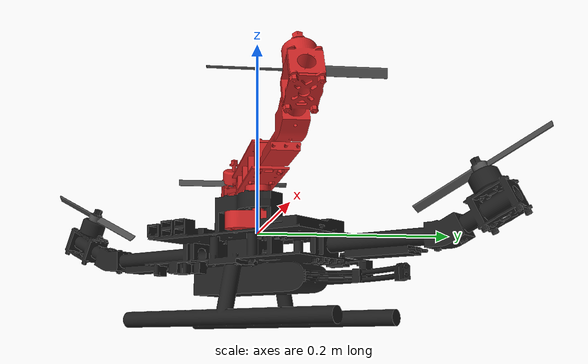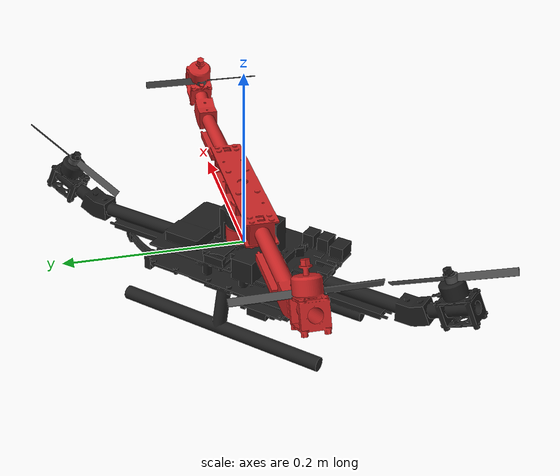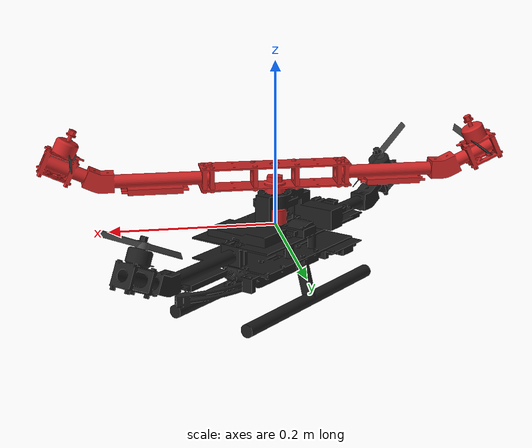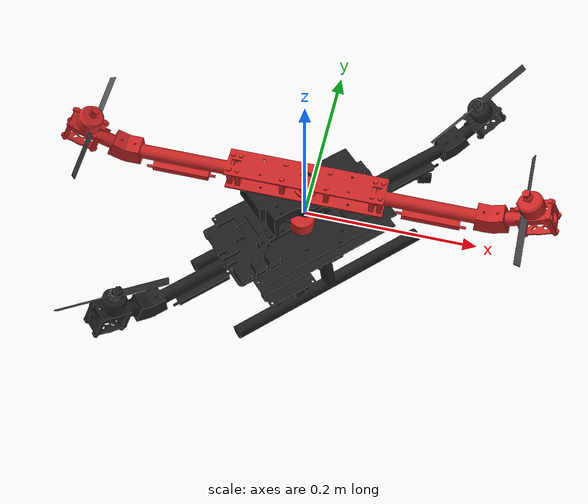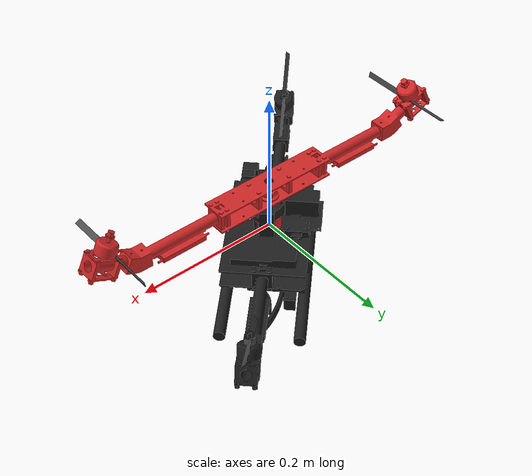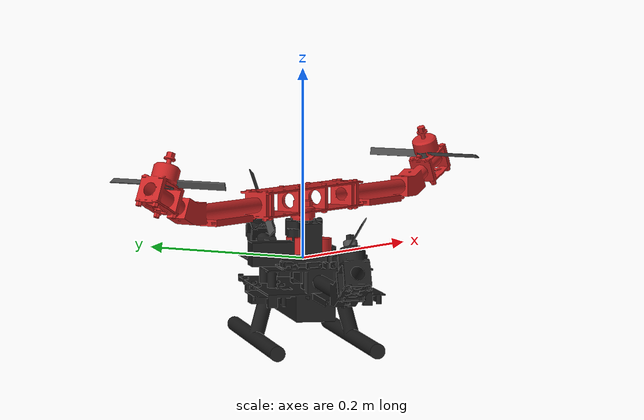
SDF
<?xml version="1.0" encoding="UTF-8"?>
<sdf version='1.9'>

  <!-- in version 2, only changed moment of inertias and masses and propellers xy locations, rest things have been kept same as version 1-->

  <model name='folding_drone_base_v2'>
    <pose>0 0 0 0 0 0</pose>
    <self_collide>false</self_collide>
    <static>false</static>
    <link name="base_link">
      <inertial>
        <mass>1.19253</mass>
        <pose>0.00 0.0 -0.02258 0 0 0</pose>
        <inertia>
          <ixx>0.0068</ixx>
          <ixy>-0.0041</ixy>
          <ixz>0</ixz>
          <iyy>0.0068</iyy>
          <iyz>0</iyz>
          <izz>0.0099</izz>
        </inertia>
      </inertial>
      <gravity>true</gravity>
      <velocity_decay/>
      <visual name="base_link_visual">
        <pose>0.0 0.0 0 0.0 0 1.57</pose>
        <transparency>0.1</transparency>
        <geometry>
          <mesh>
            <scale>1 1 1</scale>
            <uri>model://folding_drone_base_v2/meshes/main_assembly_2.0_bottom_half_m_donottranslate.STL</uri>
          </mesh>
        </geometry>
        <material>
          <script>
            <name>Gazebo/Black</name>
            <uri>file://media/materials/scripts/gazebo.material</uri>
          </script>
        </material>
      </visual>
      <collision name="base_link_collision_0">
        <pose>0 0 0 0 0 0.78539816339</pose>
        <geometry>
          <box>
            <size>0.5 0.13 0.08</size>
          </box>
        </geometry>
        <surface>
          <contact>
            <ode>
              <min_depth>0.001</min_depth>
              <max_vel>0</max_vel>
            </ode>
          </contact>
          <friction>
            <ode/>
          </friction>
        </surface>
      </collision>
      <collision name="base_link_collision_1">
        <pose>0.03 -0.03 -.058 -0.25 0 0.78</pose>
        <geometry>
          <box>
            <size>0.015 0.015 0.045</size>
          </box>
        </geometry>
        <surface>
          <contact>
            <ode>
              <min_depth>0.001</min_depth>
              <max_vel>0</max_vel>
            </ode>
          </contact>
          <friction>
            <ode/>
          </friction>
        </surface>
      </collision>
      <collision name="base_link_collision_2">
        <pose>-0.03 0.03 -.058 0.25 0 0.78</pose>
        <geometry>
          <box>
            <size>0.015 0.015 0.045</size>
          </box>
        </geometry>
        <surface>
          <contact>
            <ode>
              <min_depth>0.001</min_depth>
              <max_vel>0</max_vel>
            </ode>
          </contact>
          <friction>
            <ode/>
          </friction>
        </surface>
      </collision>
      <collision name="base_link_collision_3">
        <pose>0.04 -0.04 -.0795 0 0 0.78</pose>
        <geometry>
          <box>
            <size>0.25 0.015 0.015</size>
          </box>
        </geometry>
        <surface>
          <contact>
            <ode>
              <min_depth>0.001</min_depth>
              <max_vel>0</max_vel>
            </ode>
          </contact>
          <friction>
            <ode/>
          </friction>
        </surface>
      </collision>
      <collision name="base_link_collision_4">
        <pose>-0.04 0.04 -.0795 0 0 0.78</pose>
        <geometry>
          <box>
            <size>0.25 0.015 0.015</size>
          </box>
        </geometry>
        <surface>
          <contact>
            <ode>
              <min_depth>0.001</min_depth>
              <max_vel>0</max_vel>
            </ode>
          </contact>
          <friction>
            <ode/>
          </friction>
        </surface>
      </collision>

      <sensor name="air_pressure_sensor" type="air_pressure">
        <always_on>1</always_on>
        <update_rate>50</update_rate>
        <air_pressure>
          <pressure>
            <noise type="gaussian">
              <mean>0</mean>
              <stddev>0.01</stddev>
            </noise>
          </pressure>
        </air_pressure>
      </sensor>
      <sensor name="imu_sensor" type="imu">
        <always_on>1</always_on>
        <update_rate>250</update_rate>
        <imu>
          <angular_velocity>
            <x>
              <noise type="gaussian">
                <mean>0</mean>
                <stddev>0.00018665</stddev>
                <dynamic_bias_stddev>3.8785e-05</dynamic_bias_stddev>
                <dynamic_bias_correlation_time>1000</dynamic_bias_correlation_time>
              </noise>
            </x>
            <y>
              <noise type="gaussian">
                <mean>0</mean>
                <stddev>0.00018665</stddev>
                <dynamic_bias_stddev>3.8785e-05</dynamic_bias_stddev>
                <dynamic_bias_correlation_time>1000</dynamic_bias_correlation_time>
              </noise>
            </y>
            <z>
              <noise type="gaussian">
                <mean>0</mean>
                <stddev>0.00018665</stddev>
                <dynamic_bias_stddev>3.8785e-05</dynamic_bias_stddev>
                <dynamic_bias_correlation_time>1000</dynamic_bias_correlation_time>
              </noise>
            </z>
          </angular_velocity>
          <linear_acceleration>
            <x>
              <noise type="gaussian">
                <mean>0</mean>
                <stddev>0.00186</stddev>
                <dynamic_bias_stddev>0.006</dynamic_bias_stddev>
                <dynamic_bias_correlation_time>300</dynamic_bias_correlation_time>
              </noise>
            </x>
            <y>
              <noise type="gaussian">
                <mean>0</mean>
                <stddev>0.00186</stddev>
                <dynamic_bias_stddev>0.006</dynamic_bias_stddev>
                <dynamic_bias_correlation_time>300</dynamic_bias_correlation_time>
              </noise>
            </y>
            <z>
              <noise type="gaussian">
                <mean>0</mean>
                <stddev>0.00186</stddev>
                <dynamic_bias_stddev>0.006</dynamic_bias_stddev>
                <dynamic_bias_correlation_time>300</dynamic_bias_correlation_time>
              </noise>
            </z>
          </linear_acceleration>
        </imu>
      </sensor>
      <sensor name="navsat_sensor" type="navsat">
        <always_on>1</always_on>
        <update_rate>30</update_rate>
      </sensor>
            <sensor name='gpu_lidar' type='gpu_lidar'>"
        <pose relative_to='lidar_frame'>0 0 0 0 0 0</pose>
        <topic>model/folding_drone/lidar</topic>
        <update_rate>10</update_rate>
        <ray>
            <scan>
                <horizontal>
                    <samples>502</samples>
                    <resolution>1</resolution>
                    <min_angle>0</min_angle>
                    <max_angle>6.2831854820251465</max_angle>
                </horizontal>
                <vertical>
                    <samples>1</samples>
                    <resolution>1</resolution>
                    <min_angle>0.0</min_angle>
                    <max_angle>0.0</max_angle>
                </vertical>
            </scan>
            <range>
                <min>0.02</min>
                <max>12.0</max>
                <resolution>0.01</resolution>
            </range>
        </ray>
        <always_on>1</always_on>
        <visualize>true</visualize>
    </sensor>

    </link>

    <frame name="lidar_frame" attached_to='base_link'>  <!-- added for lidar -->
      <pose>0.0 0 0.13 0 0 1.57</pose>
    </frame>

    <link name="upper_arm">
      <gravity>true</gravity>
      <self_collide>false</self_collide>
      <velocity_decay/>
      <pose>-0.00 0.0 0 0 0 0.78539816339</pose>
      <inertial>
        <mass>0.38548</mass>
        <pose>0 0 0.058 0 0 0</pose>
        <inertia>
          <ixx>0.0037</ixx>
          <ixy>0.0035</ixy>
          <ixz>0</ixz>
          <iyy>0.0037</iyy>
          <iyz>0</iyz>
          <izz>0.0072</izz>
        </inertia>
      </inertial>
      <gravity>true</gravity>
      <velocity_decay/>
      <visual name="upper_arm_visual">
        <transparency>0.1</transparency>
        <pose>0.0 0.0 0 0 0 1.57</pose>
        <geometry>
          <mesh>
            <scale>1 1 1</scale>
            <uri>model://folding_drone_base_v2/meshes/main_assembly_2.0_top_half_m_donottranslate.STL</uri>
          </mesh>
        </geometry>
        <material>
          <script>
            <name>Gazebo/Red</name>
            <uri>file://media/materials/scripts/gazebo.material</uri>
          </script>
        </material>
      </visual>
      <collision name="upper_arm_collision">
        <pose>0 0 0.09 0 0 -0.78539816339</pose>
        <geometry>
          <box>
            <size>0.5 0.06 0.08</size>
          </box>
        </geometry>
        <surface>
          <contact>
            <ode>
              <min_depth>0.001</min_depth>
              <max_vel>0</max_vel>
            </ode>
          </contact>
          <friction>
            <ode/>
          </friction>
        </surface>
      </collision>

    </link>
    <joint name="upper_arm_joint" type="revolute">
      <parent>base_link</parent>
      <child>upper_arm</child>
      <pose>0 0 0 0 0 0</pose>
      <axis>
        <xyz>0 0 1</xyz>
        <limit>
          <!-- 0/+90 deg. -->
          <lower>-0.78539816339</lower>
          <upper>0.78539816339</upper>
          <effort>1.8639</effort>
        </limit>

        <dynamics>
          <damping>1.000</damping>
        </dynamics>
      </axis>
      <physics>
        <ode>
          <implicit_spring_damper>1</implicit_spring_damper>
        </ode>
      </physics>
    </joint>
    <link name="rotor_0">
      <gravity>true</gravity>
      <self_collide>false</self_collide>
      <velocity_decay/>
      <pose>0.24131 0.0 0.095 0 -0.4369 0</pose>
      <inertial>
          <mass>0.00386</mass>
          <inertia>
            <ixx>0.4284e-05</ixx>
            <iyy>0.0044e-05</iyy>
            <izz>0.4300e-05</izz>
          </inertia>
      </inertial>
      <visual name="rotor_0_visual">
        <pose>-0.007 0.06994 -0.00375 1.57079632679 0 0</pose>
        <geometry>
          <mesh>
            <scale>0.001 0.001 0.001</scale>
            <uri>model://folding_drone_base/meshes/5045_propeller_CW.STL</uri>
          </mesh>
        </geometry>
        <material>
          <script>
            <name>Gazebo/DarkGrey</name>
            <uri>file://media/materials/scripts/gazebo.material</uri>
          </script>
        </material>
      </visual>
      <collision name="rotor_0_collision">
        <pose>0 0 0 0 0 1.57079632679 </pose>
        <geometry>
          <box>
            <size>0.1592307692307692 0.016923076923076923 0.0008461538461538462</size>
          </box>
        </geometry>
        <surface>
          <contact>
            <ode>
              <min_depth>0.001</min_depth>
              <max_vel>0</max_vel>
            </ode>
          </contact>
          <friction>
            <ode/>
          </friction>
        </surface>
      </collision>
    </link>
    <joint name="rotor_0_joint" type="revolute">
      <parent>upper_arm</parent>
      <child>rotor_0</child>
      <axis>
        <xyz>0 0 1</xyz>
        <limit>
          <lower>-1e+16</lower>
          <upper>1e+16</upper>
        </limit>
        <dynamics>
          <spring_reference>0</spring_reference>
          <spring_stiffness>0</spring_stiffness>
        </dynamics>
      </axis>
    </joint>
    <link name="rotor_1">
      <gravity>true</gravity>
      <self_collide>false</self_collide>
      <velocity_decay/>
      <pose>-0.24131 0.0 0.095 0 0.4369 0</pose>
      <inertial>
          <mass>0.00386</mass>
          <inertia>
            <ixx>0.4284e-05</ixx>
            <iyy>0.0044e-05</iyy>
            <izz>0.4300e-05</izz>
          </inertia>
        </inertial>
      <visual name="rotor_1_visual">
        <pose>-0.007 0.06994 -0.00375 1.57079632679 0 0</pose>
        <geometry>
          <mesh>
            <scale>0.001 0.001 0.001</scale>
            <uri>model://folding_drone_base/meshes/5045_propeller_CW.STL</uri>
          </mesh>
        </geometry>
        <material>
          <script>
            <name>Gazebo/DarkGrey</name>
            <uri>file://media/materials/scripts/gazebo.material</uri>
          </script>
        </material>
      </visual>
      <collision name="rotor_1_collision">
        <pose>0 0 0 0 0 1.57079632679 </pose>
        <geometry>
          <box>
            <size>0.1592307692307692 0.016923076923076923 0.0008461538461538462</size>
          </box>
        </geometry>
        <surface>
          <contact>
            <ode>
              <min_depth>0.001</min_depth>
              <max_vel>0</max_vel>
            </ode>
          </contact>
          <friction>
            <ode/>
          </friction>
        </surface>
      </collision>
    </link>
    <joint name="rotor_1_joint" type="revolute">
      <parent>upper_arm</parent>
      <child>rotor_1</child>
      <axis>
        <xyz>0 0 1</xyz>
        <limit>
          <lower>-1e+16</lower>
          <upper>1e+16</upper>
        </limit>
        <dynamics>
          <spring_reference>0</spring_reference>
          <spring_stiffness>0</spring_stiffness>
        </dynamics>
      </axis>
    </joint>
    <link name="rotor_2">
      <gravity>true</gravity>
      <self_collide>false</self_collide>
      <velocity_decay/>
      <pose>0.17063 0.17063 0.03745 0.4369 0 -0.7854</pose>
      <!-- for checking no tilt-->
      <inertial>
          <mass>0.00386</mass>
          <inertia>
            <ixx>0.4284e-05</ixx>
            <iyy>0.0044e-05</iyy>
            <izz>0.4300e-05</izz>
          </inertia>
        </inertial>
      <visual name="rotor_2_visual">
        <pose>-0.007 0.06994 -0.00375 1.57079632679 0 0</pose>
        <geometry>
          <mesh>
            <scale>0.001 0.001 0.001</scale>
            <uri>model://folding_drone_base/meshes/5045_propeller_CCW.STL</uri>
          </mesh>
        </geometry>
        <material>
          <script>
            <name>Gazebo/DarkGrey</name>
            <uri>file://media/materials/scripts/gazebo.material</uri>
          </script>
        </material>
      </visual>
      <collision name="rotor_2_collision">
        <pose>0 0 0 0 0 1.57079632679 </pose>
        <geometry>
          <box>
            <size>0.1592307692307692 0.016923076923076923 0.0008461538461538462</size>
          </box>
        </geometry>
        <surface>
          <contact>
            <ode>
              <min_depth>0.001</min_depth>
              <max_vel>0</max_vel>
            </ode>
          </contact>
          <friction>
            <ode/>
          </friction>
        </surface>
      </collision>
    </link>
    <joint name="rotor_2_joint" type="revolute">
      <parent>base_link</parent>
      <child>rotor_2</child>
      <axis>
        <xyz>0 0 1</xyz>
        <limit>
          <lower>-1e+16</lower>
          <upper>1e+16</upper>
        </limit>
        <dynamics>
          <spring_reference>0</spring_reference>
          <spring_stiffness>0</spring_stiffness>
        </dynamics>
      </axis>
    </joint>
    <link name="rotor_3">
      <gravity>true</gravity>
      <self_collide>false</self_collide>
      <velocity_decay/>
      <pose>-0.17063 -0.17063 0.03745 -0.4369 0 -0.7854</pose>
      <!-- for checking no tilt-->
      <inertial>
          <mass>0.00386</mass>
          <inertia>
            <ixx>0.4284e-05</ixx>
            <iyy>0.0044e-05</iyy>
            <izz>0.4300e-05</izz>
          </inertia>
        </inertial>
      <visual name="rotor_3_visual">
        <pose>-0.007 0.06994 -0.00375 1.57079632679 0 0</pose>
        <geometry>
          <mesh>
            <scale>0.001 0.001 0.001</scale>
            <uri>model://folding_drone_base/meshes/5045_propeller_CCW.STL</uri>
          </mesh>
        </geometry>
        <material>
          <script>
            <name>Gazebo/DarkGrey</name>
            <uri>file://media/materials/scripts/gazebo.material</uri>
          </script>
        </material>
      </visual>
      <collision name="rotor_3_collision">
        <pose>0 0 0 0 0 1.57079632679 </pose>
        <geometry>
          <box>
            <size>0.1592307692307692 0.016923076923076923 0.0008461538461538462</size>
          </box>
        </geometry>
        <surface>
          <contact>
            <ode>
              <min_depth>0.001</min_depth>
              <max_vel>0</max_vel>
            </ode>
          </contact>
          <friction>
            <ode/>
          </friction>
        </surface>
      </collision>
    </link>
    <joint name="rotor_3_joint" type="revolute">
      <parent>base_link</parent>
      <child>rotor_3</child>
      <axis>
        <xyz>0 0 1</xyz>
        <limit>
          <lower>-1e+16</lower>
          <upper>1e+16</upper>
        </limit>
        <dynamics>
          <spring_reference>0</spring_reference>
          <spring_stiffness>0</spring_stiffness>
        </dynamics>
      </axis>
    </joint>
  </model>
</sdf>
